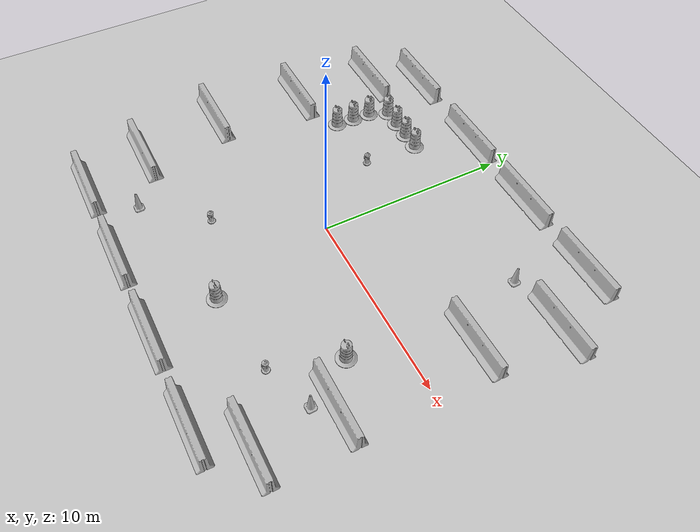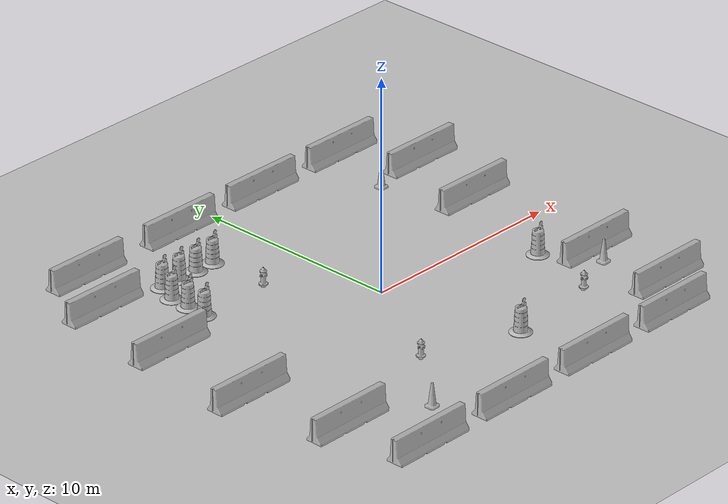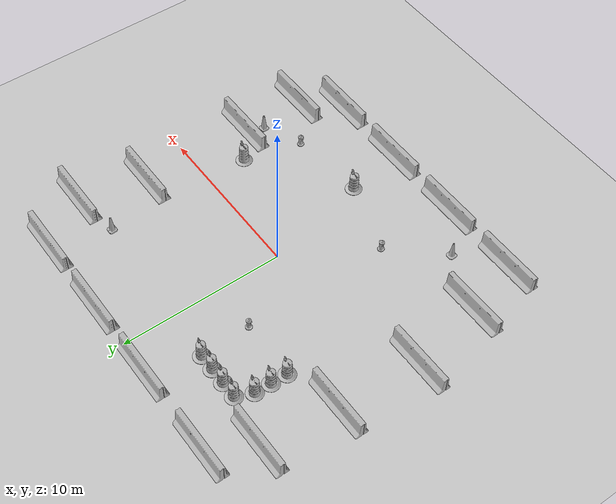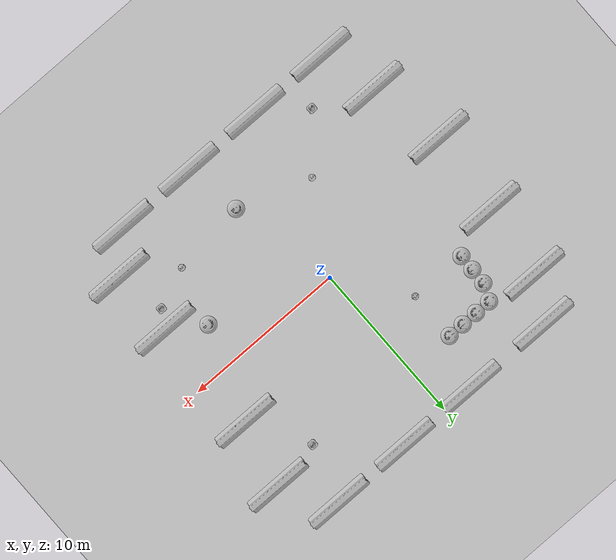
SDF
<sdf version="1.4">
 <world name="default">
  <include><uri>model://sun</uri></include>
  <include><uri>model://ground_plane</uri></include>
  <physics type="ode">
   <max_step_size>0.01</max_step_size>
   <real_time_factor>1</real_time_factor>
   <real_time_update_rate>100</real_time_update_rate>
   <gravity>0 0 -9.8</gravity>
  </physics>
  <model name="jersey_barrier">
   <static>1</static>
   <link name="link">
    <visual name="visual">
     <geometry><mesh><uri>model://jersey_barrier/meshes/jersey_barrier.dae</uri></mesh></geometry>
    </visual>
    <collision name="upright">
     <pose>0 0 0.5715 0 -0 0</pose>
     <geometry><box><size>4.06542 0.3063 1.143</size></box></geometry>
    </collision>
    <collision name="base">
     <pose>0 0 0.032258 0 -0 0</pose>
     <geometry><box><size>4.06542 0.8107 0.064516</size></box></geometry>
    </collision>
    <collision name="base2">
     <pose>0 0 0.1 0 -0 0</pose>
     <geometry><box><size>4.06542 0.65 0.1</size></box></geometry>
    </collision>
    <collision name="base3">
     <pose>0 0 0.2 0 -0 0</pose>
     <geometry><box><size>4.06542 0.5 0.1</size></box></geometry>
    </collision>
    <collision name="left-angle">
     <pose>0 -0.224 0.2401 0.9 -0 0</pose>
     <geometry><box><size>4.06542 0.5 0.064516</size></box></geometry>
    </collision>
    <collision name="right-angle">
     <pose>0 0.224 0.2401 -0.9 0 0</pose>
     <geometry><box><size>4.06542 0.5 0.064516</size></box></geometry>
    </collision>
    <velocity_decay><linear>0</linear><angular>0</angular></velocity_decay>
   </link>
   <pose>-8 -10 0 0 -0 0</pose>
  </model>
  <model name="jersey_barrier_0">
   <static>1</static>
   <link name="link">
    <visual name="visual">
     <geometry><mesh><uri>model://jersey_barrier/meshes/jersey_barrier.dae</uri></mesh></geometry>
    </visual>
    <collision name="upright">
     <pose>0 0 0.5715 0 -0 0</pose>
     <geometry><box><size>4.06542 0.3063 1.143</size></box></geometry>
    </collision>
    <collision name="base">
     <pose>0 0 0.032258 0 -0 0</pose>
     <geometry><box><size>4.06542 0.8107 0.064516</size></box></geometry>
    </collision>
    <collision name="base2">
     <pose>0 0 0.1 0 -0 0</pose>
     <geometry><box><size>4.06542 0.65 0.1</size></box></geometry>
    </collision>
    <collision name="base3">
     <pose>0 0 0.2 0 -0 0</pose>
     <geometry><box><size>4.06542 0.5 0.1</size></box></geometry>
    </collision>
    <collision name="left-angle">
     <pose>0 -0.224 0.2401 0.9 -0 0</pose>
     <geometry><box><size>4.06542 0.5 0.064516</size></box></geometry>
    </collision>
    <collision name="right-angle">
     <pose>0 0.224 0.2401 -0.9 0 0</pose>
     <geometry><box><size>4.06542 0.5 0.064516</size></box></geometry>
    </collision>
    <velocity_decay><linear>0</linear><angular>0</angular></velocity_decay>
   </link>
   <pose>-3 -10 0 0 -0 0</pose>
  </model>
  <model name="jersey_barrier_1">
   <static>1</static>
   <link name="link">
    <visual name="visual">
     <geometry><mesh><uri>model://jersey_barrier/meshes/jersey_barrier.dae</uri></mesh></geometry>
    </visual>
    <collision name="upright">
     <pose>0 0 0.5715 0 -0 0</pose>
     <geometry><box><size>4.06542 0.3063 1.143</size></box></geometry>
    </collision>
    <collision name="base">
     <pose>0 0 0.032258 0 -0 0</pose>
     <geometry><box><size>4.06542 0.8107 0.064516</size></box></geometry>
    </collision>
    <collision name="base2">
     <pose>0 0 0.1 0 -0 0</pose>
     <geometry><box><size>4.06542 0.65 0.1</size></box></geometry>
    </collision>
    <collision name="base3">
     <pose>0 0 0.2 0 -0 0</pose>
     <geometry><box><size>4.06542 0.5 0.1</size></box></geometry>
    </collision>
    <collision name="left-angle">
     <pose>0 -0.224 0.2401 0.9 -0 0</pose>
     <geometry><box><size>4.06542 0.5 0.064516</size></box></geometry>
    </collision>
    <collision name="right-angle">
     <pose>0 0.224 0.2401 -0.9 0 0</pose>
     <geometry><box><size>4.06542 0.5 0.064516</size></box></geometry>
    </collision>
    <velocity_decay><linear>0</linear><angular>0</angular></velocity_decay>
   </link>
   <pose>2 -10 0 0 -0 0</pose>
  </model>
  <model name="jersey_barrier_2">
   <static>1</static>
   <link name="link">
    <visual name="visual">
     <geometry><mesh><uri>model://jersey_barrier/meshes/jersey_barrier.dae</uri></mesh></geometry>
    </visual>
    <collision name="upright">
     <pose>0 0 0.5715 0 -0 0</pose>
     <geometry><box><size>4.06542 0.3063 1.143</size></box></geometry>
    </collision>
    <collision name="base">
     <pose>0 0 0.032258 0 -0 0</pose>
     <geometry><box><size>4.06542 0.8107 0.064516</size></box></geometry>
    </collision>
    <collision name="base2">
     <pose>0 0 0.1 0 -0 0</pose>
     <geometry><box><size>4.06542 0.65 0.1</size></box></geometry>
    </collision>
    <collision name="base3">
     <pose>0 0 0.2 0 -0 0</pose>
     <geometry><box><size>4.06542 0.5 0.1</size></box></geometry>
    </collision>
    <collision name="left-angle">
     <pose>0 -0.224 0.2401 0.9 -0 0</pose>
     <geometry><box><size>4.06542 0.5 0.064516</size></box></geometry>
    </collision>
    <collision name="right-angle">
     <pose>0 0.224 0.2401 -0.9 0 0</pose>
     <geometry><box><size>4.06542 0.5 0.064516</size></box></geometry>
    </collision>
    <velocity_decay><linear>0</linear><angular>0</angular></velocity_decay>
   </link>
   <pose>7 -10 0 0 -0 0</pose>
  </model>
  <model name="jersey_barrier_3">
   <static>1</static>
   <link name="link">
    <visual name="visual">
     <geometry><mesh><uri>model://jersey_barrier/meshes/jersey_barrier.dae</uri></mesh></geometry>
    </visual>
    <collision name="upright">
     <pose>0 0 0.5715 0 -0 0</pose>
     <geometry><box><size>4.06542 0.3063 1.143</size></box></geometry>
    </collision>
    <collision name="base">
     <pose>0 0 0.032258 0 -0 0</pose>
     <geometry><box><size>4.06542 0.8107 0.064516</size></box></geometry>
    </collision>
    <collision name="base2">
     <pose>0 0 0.1 0 -0 0</pose>
     <geometry><box><size>4.06542 0.65 0.1</size></box></geometry>
    </collision>
    <collision name="base3">
     <pose>0 0 0.2 0 -0 0</pose>
     <geometry><box><size>4.06542 0.5 0.1</size></box></geometry>
    </collision>
    <collision name="left-angle">
     <pose>0 -0.224 0.2401 0.9 -0 0</pose>
     <geometry><box><size>4.06542 0.5 0.064516</size></box></geometry>
    </collision>
    <collision name="right-angle">
     <pose>0 0.224 0.2401 -0.9 0 0</pose>
     <geometry><box><size>4.06542 0.5 0.064516</size></box></geometry>
    </collision>
    <velocity_decay><linear>0</linear><angular>0</angular></velocity_decay>
   </link>
   <pose>-7.50675 10 0 0 -0 0</pose>
  </model>
  <model name="jersey_barrier_4">
   <static>1</static>
   <link name="link">
    <visual name="visual">
     <geometry><mesh><uri>model://jersey_barrier/meshes/jersey_barrier.dae</uri></mesh></geometry>
    </visual>
    <collision name="upright">
     <pose>0 0 0.5715 0 -0 0</pose>
     <geometry><box><size>4.06542 0.3063 1.143</size></box></geometry>
    </collision>
    <collision name="base">
     <pose>0 0 0.032258 0 -0 0</pose>
     <geometry><box><size>4.06542 0.8107 0.064516</size></box></geometry>
    </collision>
    <collision name="base2">
     <pose>0 0 0.1 0 -0 0</pose>
     <geometry><box><size>4.06542 0.65 0.1</size></box></geometry>
    </collision>
    <collision name="base3">
     <pose>0 0 0.2 0 -0 0</pose>
     <geometry><box><size>4.06542 0.5 0.1</size></box></geometry>
    </collision>
    <collision name="left-angle">
     <pose>0 -0.224 0.2401 0.9 -0 0</pose>
     <geometry><box><size>4.06542 0.5 0.064516</size></box></geometry>
    </collision>
    <collision name="right-angle">
     <pose>0 0.224 0.2401 -0.9 0 0</pose>
     <geometry><box><size>4.06542 0.5 0.064516</size></box></geometry>
    </collision>
    <velocity_decay><linear>0</linear><angular>0</angular></velocity_decay>
   </link>
   <pose>-2 10 0 0 -0 0</pose>
  </model>
  <model name="jersey_barrier_5">
   <static>1</static>
   <link name="link">
    <visual name="visual">
     <geometry><mesh><uri>model://jersey_barrier/meshes/jersey_barrier.dae</uri></mesh></geometry>
    </visual>
    <collision name="upright">
     <pose>0 0 0.5715 0 -0 0</pose>
     <geometry><box><size>4.06542 0.3063 1.143</size></box></geometry>
    </collision>
    <collision name="base">
     <pose>0 0 0.032258 0 -0 0</pose>
     <geometry><box><size>4.06542 0.8107 0.064516</size></box></geometry>
    </collision>
    <collision name="base2">
     <pose>0 0 0.1 0 -0 0</pose>
     <geometry><box><size>4.06542 0.65 0.1</size></box></geometry>
    </collision>
    <collision name="base3">
     <pose>0 0 0.2 0 -0 0</pose>
     <geometry><box><size>4.06542 0.5 0.1</size></box></geometry>
    </collision>
    <collision name="left-angle">
     <pose>0 -0.224 0.2401 0.9 -0 0</pose>
     <geometry><box><size>4.06542 0.5 0.064516</size></box></geometry>
    </collision>
    <collision name="right-angle">
     <pose>0 0.224 0.2401 -0.9 0 0</pose>
     <geometry><box><size>4.06542 0.5 0.064516</size></box></geometry>
    </collision>
    <velocity_decay><linear>0</linear><angular>0</angular></velocity_decay>
   </link>
   <pose>3 10 0 0 -0 0</pose>
  </model>
  <model name="jersey_barrier_6">
   <static>1</static>
   <link name="link">
    <visual name="visual">
     <geometry><mesh><uri>model://jersey_barrier/meshes/jersey_barrier.dae</uri></mesh></geometry>
    </visual>
    <collision name="upright">
     <pose>0 0 0.5715 0 -0 0</pose>
     <geometry><box><size>4.06542 0.3063 1.143</size></box></geometry>
    </collision>
    <collision name="base">
     <pose>0 0 0.032258 0 -0 0</pose>
     <geometry><box><size>4.06542 0.8107 0.064516</size></box></geometry>
    </collision>
    <collision name="base2">
     <pose>0 0 0.1 0 -0 0</pose>
     <geometry><box><size>4.06542 0.65 0.1</size></box></geometry>
    </collision>
    <collision name="base3">
     <pose>0 0 0.2 0 -0 0</pose>
     <geometry><box><size>4.06542 0.5 0.1</size></box></geometry>
    </collision>
    <collision name="left-angle">
     <pose>0 -0.224 0.2401 0.9 -0 0</pose>
     <geometry><box><size>4.06542 0.5 0.064516</size></box></geometry>
    </collision>
    <collision name="right-angle">
     <pose>0 0.224 0.2401 -0.9 0 0</pose>
     <geometry><box><size>4.06542 0.5 0.064516</size></box></geometry>
    </collision>
    <velocity_decay><linear>0</linear><angular>0</angular></velocity_decay>
   </link>
   <pose>8 10 0 0 -0 0</pose>
  </model>
  <model name="jersey_barrier_7">
   <static>1</static>
   <link name="link">
    <visual name="visual">
     <geometry><mesh><uri>model://jersey_barrier/meshes/jersey_barrier.dae</uri></mesh></geometry>
    </visual>
    <collision name="upright">
     <pose>0 0 0.5715 0 -0 0</pose>
     <geometry><box><size>4.06542 0.3063 1.143</size></box></geometry>
    </collision>
    <collision name="base">
     <pose>0 0 0.032258 0 -0 0</pose>
     <geometry><box><size>4.06542 0.8107 0.064516</size></box></geometry>
    </collision>
    <collision name="base2">
     <pose>0 0 0.1 0 -0 0</pose>
     <geometry><box><size>4.06542 0.65 0.1</size></box></geometry>
    </collision>
    <collision name="base3">
     <pose>0 0 0.2 0 -0 0</pose>
     <geometry><box><size>4.06542 0.5 0.1</size></box></geometry>
    </collision>
    <collision name="left-angle">
     <pose>0 -0.224 0.2401 0.9 -0 0</pose>
     <geometry><box><size>4.06542 0.5 0.064516</size></box></geometry>
    </collision>
    <collision name="right-angle">
     <pose>0 0.224 0.2401 -0.9 0 0</pose>
     <geometry><box><size>4.06542 0.5 0.064516</size></box></geometry>
    </collision>
    <velocity_decay><linear>0</linear><angular>0</angular></velocity_decay>
   </link>
   <pose>9 -4 0 0 -0 0</pose>
  </model>
  <model name="jersey_barrier_8">
   <static>1</static>
   <link name="link">
    <visual name="visual">
     <geometry><mesh><uri>model://jersey_barrier/meshes/jersey_barrier.dae</uri></mesh></geometry>
    </visual>
    <collision name="upright">
     <pose>0 0 0.5715 0 -0 0</pose>
     <geometry><box><size>4.06542 0.3063 1.143</size></box></geometry>
    </collision>
    <collision name="base">
     <pose>0 0 0.032258 0 -0 0</pose>
     <geometry><box><size>4.06542 0.8107 0.064516</size></box></geometry>
    </collision>
    <collision name="base2">
     <pose>0 0 0.1 0 -0 0</pose>
     <geometry><box><size>4.06542 0.65 0.1</size></box></geometry>
    </collision>
    <collision name="base3">
     <pose>0 0 0.2 0 -0 0</pose>
     <geometry><box><size>4.06542 0.5 0.1</size></box></geometry>
    </collision>
    <collision name="left-angle">
     <pose>0 -0.224 0.2401 0.9 -0 0</pose>
     <geometry><box><size>4.06542 0.5 0.064516</size></box></geometry>
    </collision>
    <collision name="right-angle">
     <pose>0 0.224 0.2401 -0.9 0 0</pose>
     <geometry><box><size>4.06542 0.5 0.064516</size></box></geometry>
    </collision>
    <velocity_decay><linear>0</linear><angular>0</angular></velocity_decay>
   </link>
   <pose>9 3 0 0 -0 0</pose>
  </model>
  <model name="jersey_barrier_9">
   <static>1</static>
   <link name="link">
    <visual name="visual">
     <geometry><mesh><uri>model://jersey_barrier/meshes/jersey_barrier.dae</uri></mesh></geometry>
    </visual>
    <collision name="upright">
     <pose>0 0 0.5715 0 -0 0</pose>
     <geometry><box><size>4.06542 0.3063 1.143</size></box></geometry>
    </collision>
    <collision name="base">
     <pose>0 0 0.032258 0 -0 0</pose>
     <geometry><box><size>4.06542 0.8107 0.064516</size></box></geometry>
    </collision>
    <collision name="base2">
     <pose>0 0 0.1 0 -0 0</pose>
     <geometry><box><size>4.06542 0.65 0.1</size></box></geometry>
    </collision>
    <collision name="base3">
     <pose>0 0 0.2 0 -0 0</pose>
     <geometry><box><size>4.06542 0.5 0.1</size></box></geometry>
    </collision>
    <collision name="left-angle">
     <pose>0 -0.224 0.2401 0.9 -0 0</pose>
     <geometry><box><size>4.06542 0.5 0.064516</size></box></geometry>
    </collision>
    <collision name="right-angle">
     <pose>0 0.224 0.2401 -0.9 0 0</pose>
     <geometry><box><size>4.06542 0.5 0.064516</size></box></geometry>
    </collision>
    <velocity_decay><linear>0</linear><angular>0</angular></velocity_decay>
   </link>
   <pose>-9 -6.56962 0 0 -0 0</pose>
  </model>
  <model name="jersey_barrier_10">
   <static>1</static>
   <link name="link">
    <visual name="visual">
     <geometry><mesh><uri>model://jersey_barrier/meshes/jersey_barrier.dae</uri></mesh></geometry>
    </visual>
    <collision name="upright">
     <pose>0 0 0.5715 0 -0 0</pose>
     <geometry><box><size>4.06542 0.3063 1.143</size></box></geometry>
    </collision>
    <collision name="base">
     <pose>0 0 0.032258 0 -0 0</pose>
     <geometry><box><size>4.06542 0.8107 0.064516</size></box></geometry>
    </collision>
    <collision name="base2">
     <pose>0 0 0.1 0 -0 0</pose>
     <geometry><box><size>4.06542 0.65 0.1</size></box></geometry>
    </collision>
    <collision name="base3">
     <pose>0 0 0.2 0 -0 0</pose>
     <geometry><box><size>4.06542 0.5 0.1</size></box></geometry>
    </collision>
    <collision name="left-angle">
     <pose>0 -0.224 0.2401 0.9 -0 0</pose>
     <geometry><box><size>4.06542 0.5 0.064516</size></box></geometry>
    </collision>
    <collision name="right-angle">
     <pose>0 0.224 0.2401 -0.9 0 0</pose>
     <geometry><box><size>4.06542 0.5 0.064516</size></box></geometry>
    </collision>
    <velocity_decay><linear>0</linear><angular>0</angular></velocity_decay>
   </link>
   <pose>-10 -2 0 0 -0 0</pose>
  </model>
  <model name="jersey_barrier_11">
   <static>1</static>
   <link name="link">
    <visual name="visual">
     <geometry><mesh><uri>model://jersey_barrier/meshes/jersey_barrier.dae</uri></mesh></geometry>
    </visual>
    <collision name="upright">
     <pose>0 0 0.5715 0 -0 0</pose>
     <geometry><box><size>4.06542 0.3063 1.143</size></box></geometry>
    </collision>
    <collision name="base">
     <pose>0 0 0.032258 0 -0 0</pose>
     <geometry><box><size>4.06542 0.8107 0.064516</size></box></geometry>
    </collision>
    <collision name="base2">
     <pose>0 0 0.1 0 -0 0</pose>
     <geometry><box><size>4.06542 0.65 0.1</size></box></geometry>
    </collision>
    <collision name="base3">
     <pose>0 0 0.2 0 -0 0</pose>
     <geometry><box><size>4.06542 0.5 0.1</size></box></geometry>
    </collision>
    <collision name="left-angle">
     <pose>0 -0.224 0.2401 0.9 -0 0</pose>
     <geometry><box><size>4.06542 0.5 0.064516</size></box></geometry>
    </collision>
    <collision name="right-angle">
     <pose>0 0.224 0.2401 -0.9 0 0</pose>
     <geometry><box><size>4.06542 0.5 0.064516</size></box></geometry>
    </collision>
    <velocity_decay><linear>0</linear><angular>0</angular></velocity_decay>
   </link>
   <pose>-9.55113 3 0 0 -0 0</pose>
  </model>
  <model name="jersey_barrier_12">
   <static>1</static>
   <link name="link">
    <visual name="visual">
     <geometry><mesh><uri>model://jersey_barrier/meshes/jersey_barrier.dae</uri></mesh></geometry>
    </visual>
    <collision name="upright">
     <pose>0 0 0.5715 0 -0 0</pose>
     <geometry><box><size>4.06542 0.3063 1.143</size></box></geometry>
    </collision>
    <collision name="base">
     <pose>0 0 0.032258 0 -0 0</pose>
     <geometry><box><size>4.06542 0.8107 0.064516</size></box></geometry>
    </collision>
    <collision name="base2">
     <pose>0 0 0.1 0 -0 0</pose>
     <geometry><box><size>4.06542 0.65 0.1</size></box></geometry>
    </collision>
    <collision name="base3">
     <pose>0 0 0.2 0 -0 0</pose>
     <geometry><box><size>4.06542 0.5 0.1</size></box></geometry>
    </collision>
    <collision name="left-angle">
     <pose>0 -0.224 0.2401 0.9 -0 0</pose>
     <geometry><box><size>4.06542 0.5 0.064516</size></box></geometry>
    </collision>
    <collision name="right-angle">
     <pose>0 0.224 0.2401 -0.9 0 0</pose>
     <geometry><box><size>4.06542 0.5 0.064516</size></box></geometry>
    </collision>
    <velocity_decay><linear>0</linear><angular>0</angular></velocity_decay>
   </link>
   <pose>9 -8 0 0 -0 0</pose>
  </model>
  <model name="jersey_barrier_13">
   <static>1</static>
   <link name="link">
    <visual name="visual">
     <geometry><mesh><uri>model://jersey_barrier/meshes/jersey_barrier.dae</uri></mesh></geometry>
    </visual>
    <collision name="upright">
     <pose>0 0 0.5715 0 -0 0</pose>
     <geometry><box><size>4.06542 0.3063 1.143</size></box></geometry>
    </collision>
    <collision name="base">
     <pose>0 0 0.032258 0 -0 0</pose>
     <geometry><box><size>4.06542 0.8107 0.064516</size></box></geometry>
    </collision>
    <collision name="base2">
     <pose>0 0 0.1 0 -0 0</pose>
     <geometry><box><size>4.06542 0.65 0.1</size></box></geometry>
    </collision>
    <collision name="base3">
     <pose>0 0 0.2 0 -0 0</pose>
     <geometry><box><size>4.06542 0.5 0.1</size></box></geometry>
    </collision>
    <collision name="left-angle">
     <pose>0 -0.224 0.2401 0.9 -0 0</pose>
     <geometry><box><size>4.06542 0.5 0.064516</size></box></geometry>
    </collision>
    <collision name="right-angle">
     <pose>0 0.224 0.2401 -0.9 0 0</pose>
     <geometry><box><size>4.06542 0.5 0.064516</size></box></geometry>
    </collision>
    <velocity_decay><linear>0</linear><angular>0</angular></velocity_decay>
   </link>
   <pose>10 7 0 0 -0 0</pose>
  </model>
  <model name="jersey_barrier_14">
   <static>1</static>
   <link name="link">
    <visual name="visual">
     <geometry><mesh><uri>model://jersey_barrier/meshes/jersey_barrier.dae</uri></mesh></geometry>
    </visual>
    <collision name="upright">
     <pose>0 0 0.5715 0 -0 0</pose>
     <geometry><box><size>4.06542 0.3063 1.143</size></box></geometry>
    </collision>
    <collision name="base">
     <pose>0 0 0.032258 0 -0 0</pose>
     <geometry><box><size>4.06542 0.8107 0.064516</size></box></geometry>
    </collision>
    <collision name="base2">
     <pose>0 0 0.1 0 -0 0</pose>
     <geometry><box><size>4.06542 0.65 0.1</size></box></geometry>
    </collision>
    <collision name="base3">
     <pose>0 0 0.2 0 -0 0</pose>
     <geometry><box><size>4.06542 0.5 0.1</size></box></geometry>
    </collision>
    <collision name="left-angle">
     <pose>0 -0.224 0.2401 0.9 -0 0</pose>
     <geometry><box><size>4.06542 0.5 0.064516</size></box></geometry>
    </collision>
    <collision name="right-angle">
     <pose>0 0.224 0.2401 -0.9 0 0</pose>
     <geometry><box><size>4.06542 0.5 0.064516</size></box></geometry>
    </collision>
    <velocity_decay><linear>0</linear><angular>0</angular></velocity_decay>
   </link>
   <pose>-9 7.4858 0 0 -0 0</pose>
  </model>
  <model name="fire_hydrant">
   <static>1</static>
   <link name="link">
    <collision name="collision">
     <geometry><mesh><uri>model://fire_hydrant/meshes/fire_hydrant.dae</uri></mesh></geometry>
    </collision>
    <visual name="visual">
     <geometry><mesh><uri>model://fire_hydrant/meshes/fire_hydrant.dae</uri></mesh></geometry>
    </visual>
    <velocity_decay><linear>0</linear><angular>0</angular></velocity_decay>
   </link>
   <pose>6 -6 0 0 -0 0</pose>
  </model>
  <model name="fire_hydrant_0">
   <static>1</static>
   <link name="link">
    <collision name="collision">
     <geometry><mesh><uri>model://fire_hydrant/meshes/fire_hydrant.dae</uri></mesh></geometry>
    </collision>
    <visual name="visual">
     <geometry><mesh><uri>model://fire_hydrant/meshes/fire_hydrant.dae</uri></mesh></geometry>
    </visual>
    <velocity_decay><linear>0</linear><angular>0</angular></velocity_decay>
   </link>
   <pose>-3 4 0 0 -0 0</pose>
  </model>
  <model name="fire_hydrant_1">
   <static>1</static>
   <link name="link">
    <collision name="collision">
     <geometry><mesh><uri>model://fire_hydrant/meshes/fire_hydrant.dae</uri></mesh></geometry>
    </collision>
    <visual name="visual">
     <geometry><mesh><uri>model://fire_hydrant/meshes/fire_hydrant.dae</uri></mesh></geometry>
    </visual>
    <velocity_decay><linear>0</linear><angular>0</angular></velocity_decay>
   </link>
   <pose>-3 -5 0 0 -0 0</pose>
  </model>
  <model name="Construction Cone">
   <link name="link">
    <collision name="collision">
     <geometry>
      <mesh><scale>10 10 10</scale><uri>model://construction_cone/meshes/construction_cone.dae</uri></mesh>
     </geometry>
    </collision>
    <visual name="visual">
     <geometry>
      <mesh><scale>10 10 10</scale><uri>model://construction_cone/meshes/construction_cone.dae</uri></mesh>
     </geometry>
    </visual>
    <velocity_decay><linear>0</linear><angular>0</angular></velocity_decay>
    <inertial>
     <inertia><ixx>1</ixx><ixy>0</ixy><ixz>0</ixz><iyy>1</iyy><iyz>0</iyz><izz>1</izz></inertia>
     <mass>1</mass>
    </inertial>
   </link>
   <pose>-5.59121 -8 0 0 -0 0</pose>
   <static>0</static>
  </model>
  <model name="Construction Barrel">
   <link name="link">
    <inertial>
     <pose>0 0 0.4 0 -0 0</pose>
     <mass>500</mass>
     <inertia><ixx>51.2096</ixx><iyy>51.2096</iyy><izz>25</izz><ixy>0</ixy><ixz>0</ixz><iyz>0</iyz></inertia>
    </inertial>
    <collision name="collision">
     <geometry><mesh><uri>model://construction_barrel/meshes/construction_barrel.dae</uri></mesh></geometry>
    </collision>
    <visual name="visual">
     <geometry><mesh><uri>model://construction_barrel/meshes/construction_barrel.dae</uri></mesh></geometry>
    </visual>
    <velocity_decay><linear>0</linear><angular>0</angular></velocity_decay>
   </link>
   <pose>7 -2.54643 0 0 -0 0</pose>
   <static>0</static>
  </model>
  <model name="Construction Cone_0">
   <link name="link">
    <collision name="collision">
     <geometry>
      <mesh><scale>10 10 10</scale><uri>model://construction_cone/meshes/construction_cone.dae</uri></mesh>
     </geometry>
    </collision>
    <visual name="visual">
     <geometry>
      <mesh><scale>10 10 10</scale><uri>model://construction_cone/meshes/construction_cone.dae</uri></mesh>
     </geometry>
    </visual>
    <velocity_decay><linear>0</linear><angular>0</angular></velocity_decay>
    <inertial>
     <inertia><ixx>1</ixx><ixy>0</ixy><ixz>0</ixz><iyy>1</iyy><iyz>0</iyz><izz>1</izz></inertia>
     <mass>1</mass>
    </inertial>
   </link>
   <pose>7 6.55652 0 0 -0 0</pose>
   <static>0</static>
  </model>
  <model name="Construction Barrel_0">
   <link name="link">
    <inertial>
     <pose>0 0 0.4 0 -0 0</pose>
     <mass>500</mass>
     <inertia><ixx>51.2096</ixx><iyy>51.2096</iyy><izz>25</izz><ixy>0</ixy><ixz>0</ixz><iyz>0</iyz></inertia>
    </inertial>
    <collision name="collision">
     <geometry><mesh><uri>model://construction_barrel/meshes/construction_barrel.dae</uri></mesh></geometry>
    </collision>
    <visual name="visual">
     <geometry><mesh><uri>model://construction_barrel/meshes/construction_barrel.dae</uri></mesh></geometry>
    </visual>
    <velocity_decay><linear>0</linear><angular>0</angular></velocity_decay>
   </link>
   <pose>1.45104 -6.51057 0 0 -0 0</pose>
   <static>0</static>
  </model>
  <model name="Construction Barrel_1">
   <link name="link">
    <inertial>
     <pose>0 0 0.4 0 -0 0</pose>
     <mass>500</mass>
     <inertia><ixx>51.2096</ixx><iyy>51.2096</iyy><izz>25</izz><ixy>0</ixy><ixz>0</ixz><iyz>0</iyz></inertia>
    </inertial>
    <collision name="collision">
     <geometry><mesh><uri>model://construction_barrel/meshes/construction_barrel.dae</uri></mesh></geometry>
    </collision>
    <visual name="visual">
     <geometry><mesh><uri>model://construction_barrel/meshes/construction_barrel.dae</uri></mesh></geometry>
    </visual>
    <velocity_decay><linear>0</linear><angular>0</angular></velocity_decay>
   </link>
   <pose>-6.5081 4 0 0 -0 0</pose>
   <static>0</static>
  </model>
  <model name="Construction Barrel_2">
   <link name="link">
    <inertial>
     <pose>0 0 0.4 0 -0 0</pose>
     <mass>500</mass>
     <inertia><ixx>51.2096</ixx><iyy>51.2096</iyy><izz>25</izz><ixy>0</ixy><ixz>0</ixz><iyz>0</iyz></inertia>
    </inertial>
    <collision name="collision">
     <geometry><mesh><uri>model://construction_barrel/meshes/construction_barrel.dae</uri></mesh></geometry>
    </collision>
    <visual name="visual">
     <geometry><mesh><uri>model://construction_barrel/meshes/construction_barrel.dae</uri></mesh></geometry>
    </visual>
    <velocity_decay><linear>0</linear><angular>0</angular></velocity_decay>
   </link>
   <pose>-6.46924 5 0 0 -0 0</pose>
   <static>0</static>
  </model>
  <model name="Construction Barrel_3">
   <link name="link">
    <inertial>
     <pose>0 0 0.4 0 -0 0</pose>
     <mass>500</mass>
     <inertia><ixx>51.2096</ixx><iyy>51.2096</iyy><izz>25</izz><ixy>0</ixy><ixz>0</ixz><iyz>0</iyz></inertia>
    </inertial>
    <collision name="collision">
     <geometry><mesh><uri>model://construction_barrel/meshes/construction_barrel.dae</uri></mesh></geometry>
    </collision>
    <visual name="visual">
     <geometry><mesh><uri>model://construction_barrel/meshes/construction_barrel.dae</uri></mesh></geometry>
    </visual>
    <velocity_decay><linear>0</linear><angular>0</angular></velocity_decay>
   </link>
   <pose>-6.4302 6 0 0 -0 0</pose>
   <static>0</static>
  </model>
  <model name="Construction Barrel_4">
   <link name="link">
    <inertial>
     <pose>0 0 0.4 0 -0 0</pose>
     <mass>500</mass>
     <inertia><ixx>51.2096</ixx><iyy>51.2096</iyy><izz>25</izz><ixy>0</ixy><ixz>0</ixz><iyz>0</iyz></inertia>
    </inertial>
    <collision name="collision">
     <geometry><mesh><uri>model://construction_barrel/meshes/construction_barrel.dae</uri></mesh></geometry>
    </collision>
    <visual name="visual">
     <geometry><mesh><uri>model://construction_barrel/meshes/construction_barrel.dae</uri></mesh></geometry>
    </visual>
    <velocity_decay><linear>0</linear><angular>0</angular></velocity_decay>
   </link>
   <pose>-6 7 0 0 -0 0</pose>
   <static>0</static>
  </model>
  <model name="Construction Barrel_5">
   <link name="link">
    <inertial>
     <pose>0 0 0.4 0 -0 0</pose>
     <mass>500</mass>
     <inertia><ixx>51.2096</ixx><iyy>51.2096</iyy><izz>25</izz><ixy>0</ixy><ixz>0</ixz><iyz>0</iyz></inertia>
    </inertial>
    <collision name="collision">
     <geometry><mesh><uri>model://construction_barrel/meshes/construction_barrel.dae</uri></mesh></geometry>
    </collision>
    <visual name="visual">
     <geometry><mesh><uri>model://construction_barrel/meshes/construction_barrel.dae</uri></mesh></geometry>
    </visual>
    <velocity_decay><linear>0</linear><angular>0</angular></velocity_decay>
   </link>
   <pose>-5 7 0 0 -0 0</pose>
   <static>0</static>
  </model>
  <model name="Construction Barrel_6">
   <link name="link">
    <inertial>
     <pose>0 0 0.4 0 -0 0</pose>
     <mass>500</mass>
     <inertia><ixx>51.2096</ixx><iyy>51.2096</iyy><izz>25</izz><ixy>0</ixy><ixz>0</ixz><iyz>0</iyz></inertia>
    </inertial>
    <collision name="collision">
     <geometry><mesh><uri>model://construction_barrel/meshes/construction_barrel.dae</uri></mesh></geometry>
    </collision>
    <visual name="visual">
     <geometry><mesh><uri>model://construction_barrel/meshes/construction_barrel.dae</uri></mesh></geometry>
    </visual>
    <velocity_decay><linear>0</linear><angular>0</angular></velocity_decay>
   </link>
   <pose>-4 7 0 0 -0 0</pose>
   <static>0</static>
  </model>
  <model name="Construction Barrel_7">
   <link name="link">
    <inertial>
     <pose>0 0 0.4 0 -0 0</pose>
     <mass>500</mass>
     <inertia><ixx>51.2096</ixx><iyy>51.2096</iyy><izz>25</izz><ixy>0</ixy><ixz>0</ixz><iyz>0</iyz></inertia>
    </inertial>
    <collision name="collision">
     <geometry><mesh><uri>model://construction_barrel/meshes/construction_barrel.dae</uri></mesh></geometry>
    </collision>
    <visual name="visual">
     <geometry><mesh><uri>model://construction_barrel/meshes/construction_barrel.dae</uri></mesh></geometry>
    </visual>
    <velocity_decay><linear>0</linear><angular>0</angular></velocity_decay>
   </link>
   <pose>-3 7 0 0 -0 0</pose>
   <static>0</static>
  </model>
  <model name="Construction Cone_1">
   <link name="link">
    <collision name="collision">
     <geometry>
      <mesh><scale>10 10 10</scale><uri>model://construction_cone/meshes/construction_cone.dae</uri></mesh>
     </geometry>
    </collision>
    <visual name="visual">
     <geometry>
      <mesh><scale>10 10 10</scale><uri>model://construction_cone/meshes/construction_cone.dae</uri></mesh>
     </geometry>
    </visual>
    <velocity_decay><linear>0</linear><angular>0</angular></velocity_decay>
    <inertial>
     <inertia><ixx>1</ixx><ixy>0</ixy><ixz>0</ixz><iyy>1</iyy><iyz>0</iyz><izz>1</izz></inertia>
     <mass>1</mass>
    </inertial>
   </link>
   <pose>8.42887 -5 0 0 -0 0</pose>
   <static>0</static>
  </model>
 </world>
</sdf>
